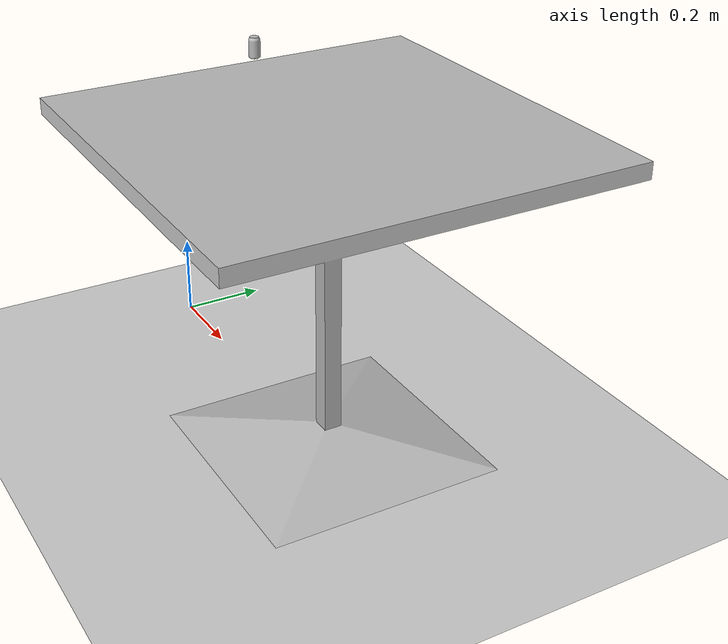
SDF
<?xml version="1.0" ?>
<sdf version="1.5">
  <world name="default">
    <!-- A global light source -->
    <include>
      <uri>model://sun</uri>
    </include>
    <!-- A ground plane -->
    <include>
      <uri>model://ground_plane</uri>
    </include>
    <model name='cafe_table'>
      <static>1</static>
      <link name='link'>
        <collision name='surface'>
          <pose>0 0 0.755 0 -0 0</pose>
          <geometry>
            <box>
              <size>0.913 0.913 0.04</size>
            </box>
          </geometry>
          <max_contacts>10</max_contacts>
          <surface>
            <contact>
              <ode/>
            </contact>
            <bounce/>
            <friction>
              <ode/>
            </friction>
          </surface>
        </collision>
        <collision name='column'>
          <pose>0 0 0.37 0 -0 0</pose>
          <geometry>
            <box>
              <size>0.042 0.042 0.74</size>
            </box>
          </geometry>
          <max_contacts>10</max_contacts>
          <surface>
            <contact>
              <ode/>
            </contact>
            <bounce/>
            <friction>
              <ode/>
            </friction>
          </surface>
        </collision>
        <collision name='base'>
          <pose>0 0 0.02 0 -0 0</pose>
          <geometry>
            <box>
              <size>0.56 0.56 0.04</size>
            </box>
          </geometry>
          <max_contacts>10</max_contacts>
          <surface>
            <contact>
              <ode/>
            </contact>
            <bounce/>
            <friction>
              <ode/>
            </friction>
          </surface>
        </collision>
        <visual name='visual'>
          <geometry>
            <mesh>
              <uri>model://cafe_table/meshes/cafe_table.dae</uri>
            </mesh>
          </geometry>
        </visual>
        <self_collide>0</self_collide>
        <kinematic>0</kinematic>
        <gravity>1</gravity>
      </link>
      <pose>0.746172 0.018912 0 0 -0 0</pose>
    </model>
    <model name='coke_can'>
      <link name='link'>
        <inertial>
          <pose>-0.005 -0.005 0.01 0 -0 0</pose>
          <mass>0.39</mass>
          <inertia>
            <ixx>0.00058</ixx>
            <ixy>0</ixy>
            <ixz>0</ixz>
            <iyy>0.00058</iyy>
            <iyz>0</iyz>
            <izz>0.00019</izz>
          </inertia>
        </inertial>
        <collision name='collision'>
          <pose>-0.005 -0.005 0.01 0 -0 0</pose>
          <geometry>
            <cylinder>
              <radius>0.0319015</radius>
              <length>0.123</length>
            </cylinder>
          </geometry>
          <surface>
            <friction>
              <ode>
                <mu>1</mu>
                <mu2>1</mu2>
              </ode>
            </friction>
            <contact>
              <ode>
                <kp>1e+07</kp>
                <kd>1</kd>
                <min_depth>0.001</min_depth>
                <max_vel>0.1</max_vel>
              </ode>
            </contact>
            <bounce/>
          </surface>
          <max_contacts>10</max_contacts>
        </collision>
        <visual name='visual'>
          <pose>0 0 -0.23 0 -0 0</pose>
          <geometry>
            <mesh>
              <uri>model://coke_can/meshes/coke_can.dae</uri>
              <scale>0.388567 0.388567 0.388567</scale>
            </mesh>
          </geometry>
        </visual>
        <self_collide>0</self_collide>
        <kinematic>0</kinematic>
        <gravity>1</gravity>
      </link>
      <pose>0.455768 0 1 0 -0 0</pose>
    </model>
  </world>
</sdf>
